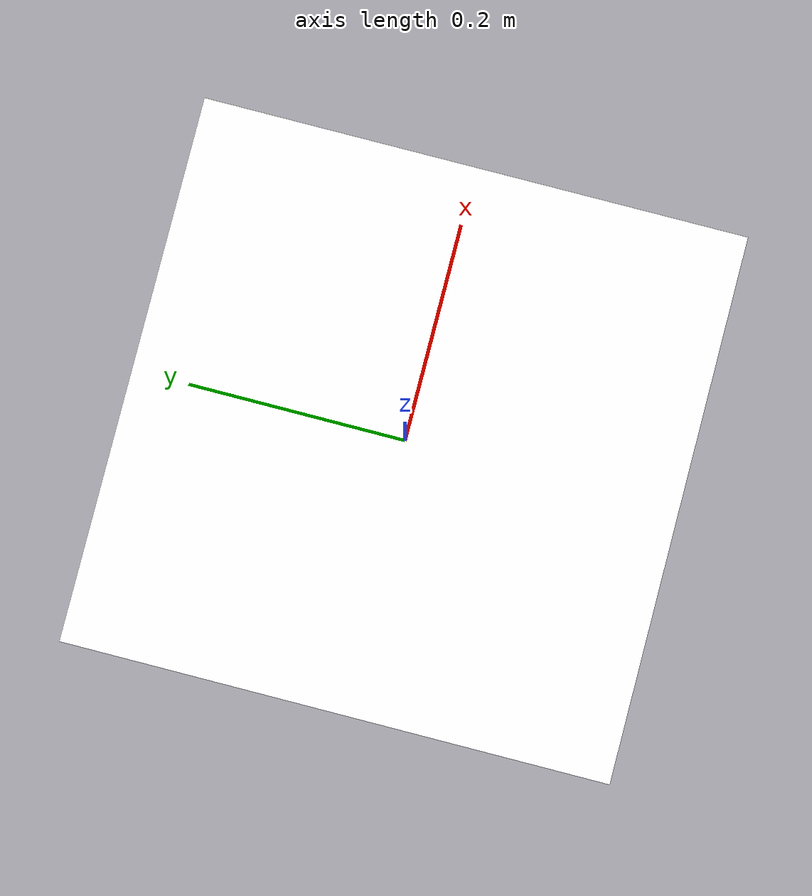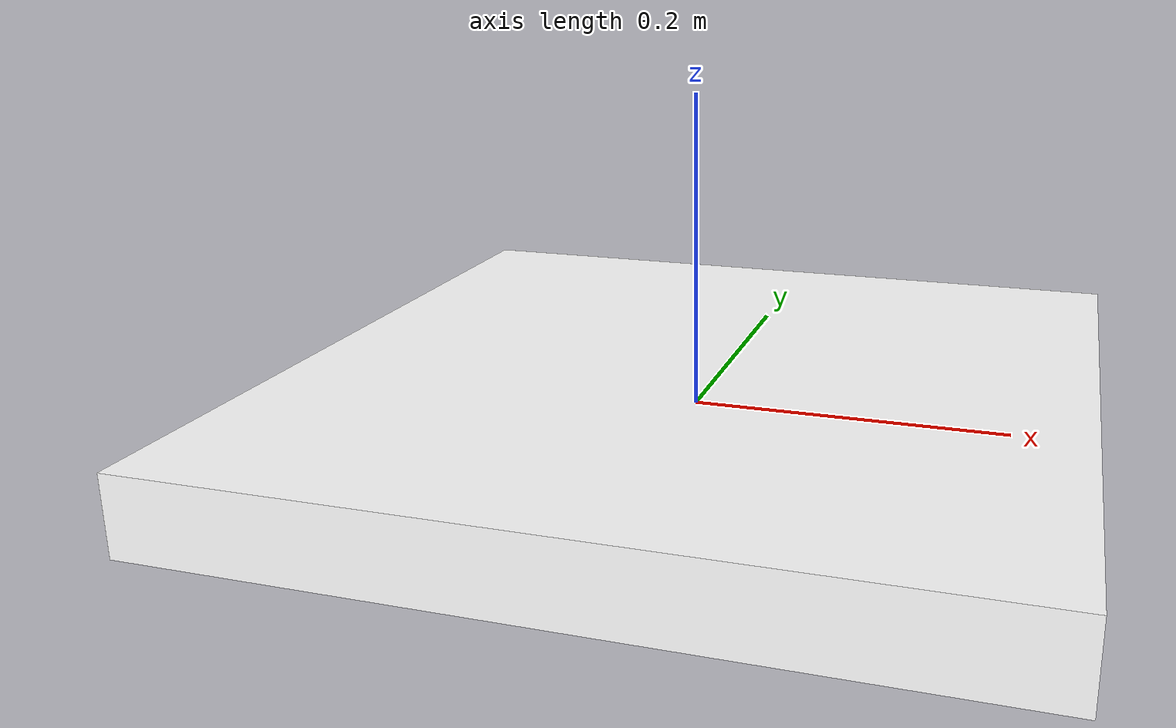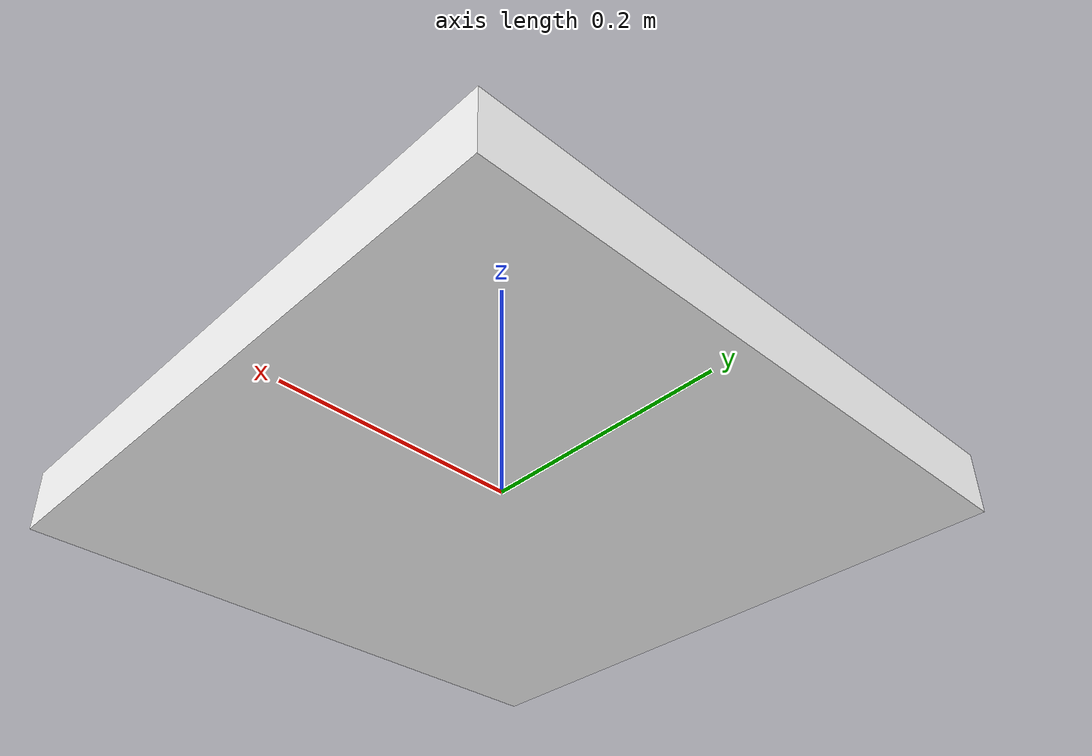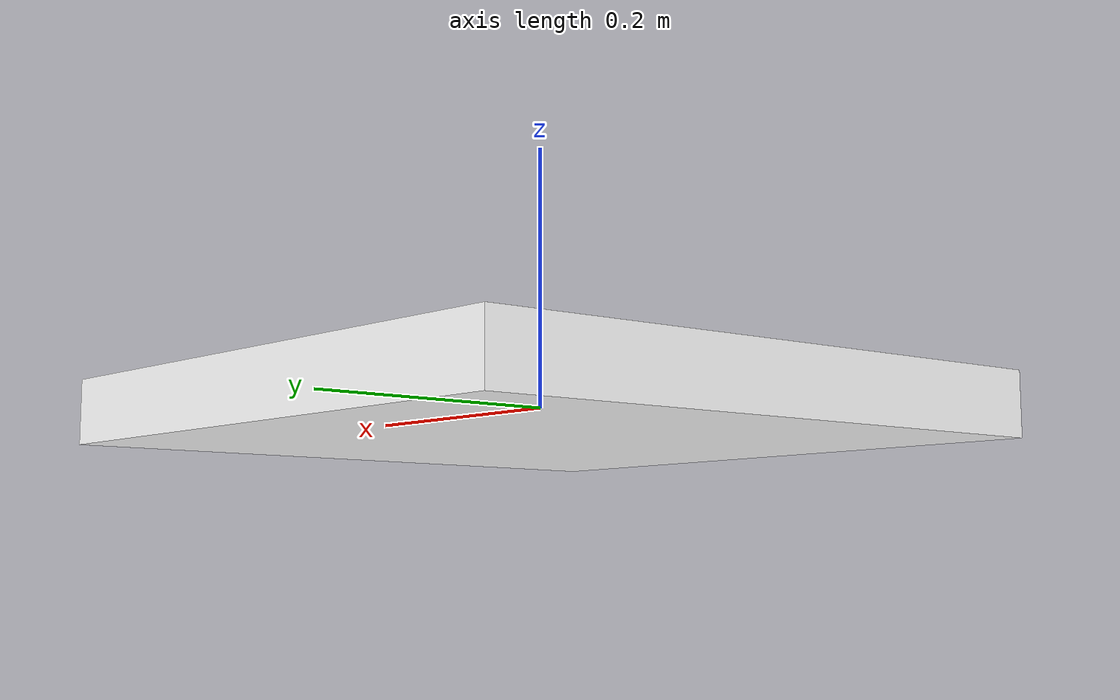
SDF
<?xml version="1.0"?>
<sdf version="1.7">
  <model name="platform">
    <pose> 0 0 0 0 0 0 </pose>
    <link name="platform_link">
      <inertial>
        <mass>1</mass>
        <inertia>
          <ixx>0.13066653670985687</ixx>
          <ixy>0.0</ixy>
          <ixz>0.0</ixz>
          <iyy>0.13066653670985687</iyy>
          <iyz>0.0</iyz>
          <izz>0.11785113019775793</izz>
        </inertia>
      </inertial>
      <collision name="collision">
        <geometry>
          <box>
            <size> 0.5 0.5 0.05 </size>
          </box>
        </geometry>
        <surface>
            <friction>
                <ode>
                    <mu>1.0</mu>
                    <mu2>1.0</mu2>
                </ode>
            </friction>
        </surface>
      </collision>
      <visual name="visual">
        <geometry>
          <box>
            <size> 0.5 0.5 0.05 </size>
          </box>
        </geometry>
        <material>
          <diffuse>1 1 1 1</diffuse>
        </material>
      </visual>
    </link>
  </model>
</sdf>
